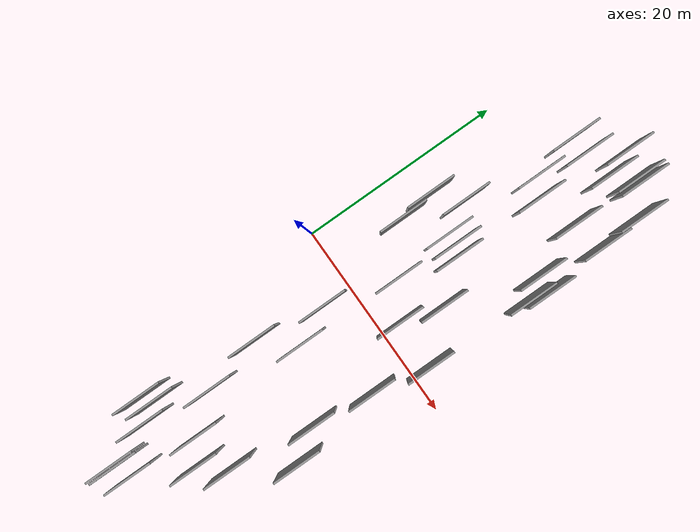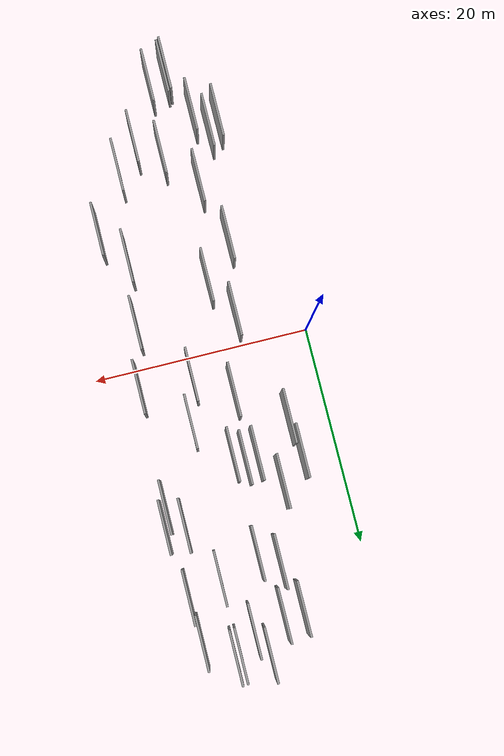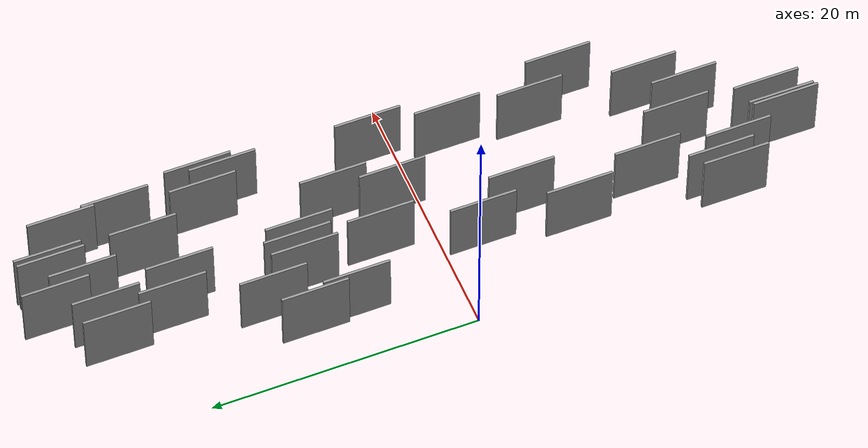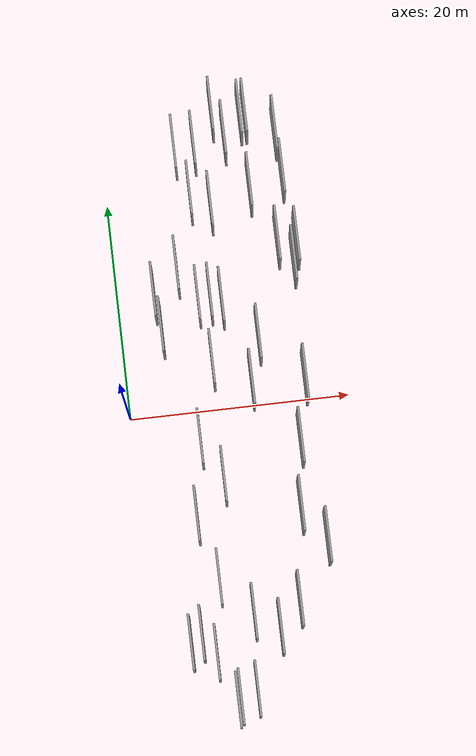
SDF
<sdf version="1.6">
 <world name="default">
  <scene>
   <sky><clouds><speed>12</speed></clouds></sky>
   <ambient>0.4 0.4 0.4 1</ambient>
   <background>0.7 0.7 0.7 1</background>
   <shadows>1</shadows>
  </scene>
  <gravity>0 0 -9.8066</gravity>
  <magnetic_field>6e-06 2.3e-05 -4.2e-05</magnetic_field>
  <physics default="0" name="default_physics" type="ode">
   <ode>
    <solver>
     <type>quick</type>
     <iters>10</iters>
     <sor>1.0</sor>
     <use_dynamic_moi_rescaling>0</use_dynamic_moi_rescaling>
    </solver>
    <constraints>
     <cfm>0</cfm>
     <erp>0.2</erp>
     <contact_max_correcting_vel>100</contact_max_correcting_vel>
     <contact_surface_layer>0.001</contact_surface_layer>
    </constraints>
   </ode>
   <max_step_size>0.004</max_step_size>
   <real_time_factor>1</real_time_factor>
   <real_time_update_rate>250</real_time_update_rate>
  </physics>
  <light name="sun" type="directional">
   <pose>0 0 10 0 0 0</pose>
   <diffuse>0.8 0.8 0.8 1</diffuse>
   <specular>0.2 0.2 0.2 1</specular>
   <attenuation>
    <range>1000</range>
    <constant>0.9</constant>
    <linear>0.01</linear>
    <quadratic>0.001</quadratic>
   </attenuation>
   <direction>-0.5 0.1 -0.9</direction>
  </light>
  <model name="grey_wall_1">
   <static>1</static>
   <pose>16.2850 20.9617 0.0 0.000000 0.000000 1.570796</pose>
   <link name="link">
    <pose>0 0 2.50 0 0 0</pose>
    <collision name="collision"><geometry><box><size>5.00 0.2 5.00</size></box></geometry></collision>
    <visual name="visual">
     <cast_shadows>0</cast_shadows>
     <geometry><box><size>5.00 0.2 5.00</size></box></geometry>
     <material>
      <script>
       <uri>model://grey_wall/materials/scripts</uri>
       <uri>model://grey_wall/materials/textures</uri>
       <name>vrc/grey_wall</name>
      </script>
     </material>
    </visual>
   </link>
  </model>
  <model name="grey_wall_2">
   <static>1</static>
   <pose>8.5123 24.4699 0.0 0.000000 0.000000 1.570796</pose>
   <link name="link">
    <pose>0 0 2.50 0 0 0</pose>
    <collision name="collision"><geometry><box><size>5.00 0.2 5.00</size></box></geometry></collision>
    <visual name="visual">
     <cast_shadows>0</cast_shadows>
     <geometry><box><size>5.00 0.2 5.00</size></box></geometry>
     <material>
      <script>
       <uri>model://grey_wall/materials/scripts</uri>
       <uri>model://grey_wall/materials/textures</uri>
       <name>vrc/grey_wall</name>
      </script>
     </material>
    </visual>
   </link>
  </model>
  <model name="grey_wall_3">
   <static>1</static>
   <pose>9.1165 -18.8987 0.0 0.000000 0.000000 1.570796</pose>
   <link name="link">
    <pose>0 0 2.50 0 0 0</pose>
    <collision name="collision"><geometry><box><size>5.00 0.2 5.00</size></box></geometry></collision>
    <visual name="visual">
     <cast_shadows>0</cast_shadows>
     <geometry><box><size>5.00 0.2 5.00</size></box></geometry>
     <material>
      <script>
       <uri>model://grey_wall/materials/scripts</uri>
       <uri>model://grey_wall/materials/textures</uri>
       <name>vrc/grey_wall</name>
      </script>
     </material>
    </visual>
   </link>
  </model>
  <model name="grey_wall_4">
   <static>1</static>
   <pose>7.3375 10.1421 0.0 0.000000 0.000000 1.570796</pose>
   <link name="link">
    <pose>0 0 2.50 0 0 0</pose>
    <collision name="collision"><geometry><box><size>5.00 0.2 5.00</size></box></geometry></collision>
    <visual name="visual">
     <cast_shadows>0</cast_shadows>
     <geometry><box><size>5.00 0.2 5.00</size></box></geometry>
     <material>
      <script>
       <uri>model://grey_wall/materials/scripts</uri>
       <uri>model://grey_wall/materials/textures</uri>
       <name>vrc/grey_wall</name>
      </script>
     </material>
    </visual>
   </link>
  </model>
  <model name="grey_wall_5">
   <static>1</static>
   <pose>16.0768 25.0538 0.0 0.000000 0.000000 1.570796</pose>
   <link name="link">
    <pose>0 0 2.50 0 0 0</pose>
    <collision name="collision"><geometry><box><size>5.00 0.2 5.00</size></box></geometry></collision>
    <visual name="visual">
     <cast_shadows>0</cast_shadows>
     <geometry><box><size>5.00 0.2 5.00</size></box></geometry>
     <material>
      <script>
       <uri>model://grey_wall/materials/scripts</uri>
       <uri>model://grey_wall/materials/textures</uri>
       <name>vrc/grey_wall</name>
      </script>
     </material>
    </visual>
   </link>
  </model>
  <model name="grey_wall_6">
   <static>1</static>
   <pose>11.3872 25.1370 0.0 0.000000 0.000000 1.570796</pose>
   <link name="link">
    <pose>0 0 2.50 0 0 0</pose>
    <collision name="collision"><geometry><box><size>5.00 0.2 5.00</size></box></geometry></collision>
    <visual name="visual">
     <cast_shadows>0</cast_shadows>
     <geometry><box><size>5.00 0.2 5.00</size></box></geometry>
     <material>
      <script>
       <uri>model://grey_wall/materials/scripts</uri>
       <uri>model://grey_wall/materials/textures</uri>
       <name>vrc/grey_wall</name>
      </script>
     </material>
    </visual>
   </link>
  </model>
  <model name="grey_wall_7">
   <static>1</static>
   <pose>8.6563 -25.7022 0.0 0.000000 0.000000 1.570796</pose>
   <link name="link">
    <pose>0 0 2.50 0 0 0</pose>
    <collision name="collision"><geometry><box><size>5.00 0.2 5.00</size></box></geometry></collision>
    <visual name="visual">
     <cast_shadows>0</cast_shadows>
     <geometry><box><size>5.00 0.2 5.00</size></box></geometry>
     <material>
      <script>
       <uri>model://grey_wall/materials/scripts</uri>
       <uri>model://grey_wall/materials/textures</uri>
       <name>vrc/grey_wall</name>
      </script>
     </material>
    </visual>
   </link>
  </model>
  <model name="grey_wall_8">
   <static>1</static>
   <pose>7.1136 -26.2114 0.0 0.000000 0.000000 1.570796</pose>
   <link name="link">
    <pose>0 0 2.50 0 0 0</pose>
    <collision name="collision"><geometry><box><size>5.00 0.2 5.00</size></box></geometry></collision>
    <visual name="visual">
     <cast_shadows>0</cast_shadows>
     <geometry><box><size>5.00 0.2 5.00</size></box></geometry>
     <material>
      <script>
       <uri>model://grey_wall/materials/scripts</uri>
       <uri>model://grey_wall/materials/textures</uri>
       <name>vrc/grey_wall</name>
      </script>
     </material>
    </visual>
   </link>
  </model>
  <model name="grey_wall_9">
   <static>1</static>
   <pose>15.1032 -3.7774 0.0 0.000000 0.000000 1.570796</pose>
   <link name="link">
    <pose>0 0 2.50 0 0 0</pose>
    <collision name="collision"><geometry><box><size>5.00 0.2 5.00</size></box></geometry></collision>
    <visual name="visual">
     <cast_shadows>0</cast_shadows>
     <geometry><box><size>5.00 0.2 5.00</size></box></geometry>
     <material>
      <script>
       <uri>model://grey_wall/materials/scripts</uri>
       <uri>model://grey_wall/materials/textures</uri>
       <name>vrc/grey_wall</name>
      </script>
     </material>
    </visual>
   </link>
  </model>
  <model name="grey_wall_10">
   <static>1</static>
   <pose>4.2993 -20.2837 0.0 0.000000 0.000000 1.570796</pose>
   <link name="link">
    <pose>0 0 2.50 0 0 0</pose>
    <collision name="collision"><geometry><box><size>5.00 0.2 5.00</size></box></geometry></collision>
    <visual name="visual">
     <cast_shadows>0</cast_shadows>
     <geometry><box><size>5.00 0.2 5.00</size></box></geometry>
     <material>
      <script>
       <uri>model://grey_wall/materials/scripts</uri>
       <uri>model://grey_wall/materials/textures</uri>
       <name>vrc/grey_wall</name>
      </script>
     </material>
    </visual>
   </link>
  </model>
  <model name="grey_wall_11">
   <static>1</static>
   <pose>6.3876 -15.5115 0.0 0.000000 0.000000 1.570796</pose>
   <link name="link">
    <pose>0 0 2.50 0 0 0</pose>
    <collision name="collision"><geometry><box><size>5.00 0.2 5.00</size></box></geometry></collision>
    <visual name="visual">
     <cast_shadows>0</cast_shadows>
     <geometry><box><size>5.00 0.2 5.00</size></box></geometry>
     <material>
      <script>
       <uri>model://grey_wall/materials/scripts</uri>
       <uri>model://grey_wall/materials/textures</uri>
       <name>vrc/grey_wall</name>
      </script>
     </material>
    </visual>
   </link>
  </model>
  <model name="grey_wall_12">
   <static>1</static>
   <pose>15.1484 14.7939 0.0 0.000000 0.000000 1.570796</pose>
   <link name="link">
    <pose>0 0 2.50 0 0 0</pose>
    <collision name="collision"><geometry><box><size>5.00 0.2 5.00</size></box></geometry></collision>
    <visual name="visual">
     <cast_shadows>0</cast_shadows>
     <geometry><box><size>5.00 0.2 5.00</size></box></geometry>
     <material>
      <script>
       <uri>model://grey_wall/materials/scripts</uri>
       <uri>model://grey_wall/materials/textures</uri>
       <name>vrc/grey_wall</name>
      </script>
     </material>
    </visual>
   </link>
  </model>
  <model name="grey_wall_13">
   <static>1</static>
   <pose>7.8260 -6.4523 0.0 0.000000 0.000000 1.570796</pose>
   <link name="link">
    <pose>0 0 2.50 0 0 0</pose>
    <collision name="collision"><geometry><box><size>5.00 0.2 5.00</size></box></geometry></collision>
    <visual name="visual">
     <cast_shadows>0</cast_shadows>
     <geometry><box><size>5.00 0.2 5.00</size></box></geometry>
     <material>
      <script>
       <uri>model://grey_wall/materials/scripts</uri>
       <uri>model://grey_wall/materials/textures</uri>
       <name>vrc/grey_wall</name>
      </script>
     </material>
    </visual>
   </link>
  </model>
  <model name="grey_wall_14">
   <static>1</static>
   <pose>11.3281 1.9668 0.0 0.000000 0.000000 1.570796</pose>
   <link name="link">
    <pose>0 0 2.50 0 0 0</pose>
    <collision name="collision"><geometry><box><size>5.00 0.2 5.00</size></box></geometry></collision>
    <visual name="visual">
     <cast_shadows>0</cast_shadows>
     <geometry><box><size>5.00 0.2 5.00</size></box></geometry>
     <material>
      <script>
       <uri>model://grey_wall/materials/scripts</uri>
       <uri>model://grey_wall/materials/textures</uri>
       <name>vrc/grey_wall</name>
      </script>
     </material>
    </visual>
   </link>
  </model>
  <model name="grey_wall_15">
   <static>1</static>
   <pose>7.6698 19.8622 0.0 0.000000 0.000000 1.570796</pose>
   <link name="link">
    <pose>0 0 2.50 0 0 0</pose>
    <collision name="collision"><geometry><box><size>5.00 0.2 5.00</size></box></geometry></collision>
    <visual name="visual">
     <cast_shadows>0</cast_shadows>
     <geometry><box><size>5.00 0.2 5.00</size></box></geometry>
     <material>
      <script>
       <uri>model://grey_wall/materials/scripts</uri>
       <uri>model://grey_wall/materials/textures</uri>
       <name>vrc/grey_wall</name>
      </script>
     </material>
    </visual>
   </link>
  </model>
  <model name="grey_wall_16">
   <static>1</static>
   <pose>6.7190 24.3007 0.0 0.000000 0.000000 1.570796</pose>
   <link name="link">
    <pose>0 0 2.50 0 0 0</pose>
    <collision name="collision"><geometry><box><size>5.00 0.2 5.00</size></box></geometry></collision>
    <visual name="visual">
     <cast_shadows>0</cast_shadows>
     <geometry><box><size>5.00 0.2 5.00</size></box></geometry>
     <material>
      <script>
       <uri>model://grey_wall/materials/scripts</uri>
       <uri>model://grey_wall/materials/textures</uri>
       <name>vrc/grey_wall</name>
      </script>
     </material>
    </visual>
   </link>
  </model>
  <model name="grey_wall_17">
   <static>1</static>
   <pose>8.4577 10.2517 0.0 0.000000 0.000000 1.570796</pose>
   <link name="link">
    <pose>0 0 2.50 0 0 0</pose>
    <collision name="collision"><geometry><box><size>5.00 0.2 5.00</size></box></geometry></collision>
    <visual name="visual">
     <cast_shadows>0</cast_shadows>
     <geometry><box><size>5.00 0.2 5.00</size></box></geometry>
     <material>
      <script>
       <uri>model://grey_wall/materials/scripts</uri>
       <uri>model://grey_wall/materials/textures</uri>
       <name>vrc/grey_wall</name>
      </script>
     </material>
    </visual>
   </link>
  </model>
  <model name="grey_wall_18">
   <static>1</static>
   <pose>6.8501 -26.4344 0.0 0.000000 0.000000 1.570796</pose>
   <link name="link">
    <pose>0 0 2.50 0 0 0</pose>
    <collision name="collision"><geometry><box><size>5.00 0.2 5.00</size></box></geometry></collision>
    <visual name="visual">
     <cast_shadows>0</cast_shadows>
     <geometry><box><size>5.00 0.2 5.00</size></box></geometry>
     <material>
      <script>
       <uri>model://grey_wall/materials/scripts</uri>
       <uri>model://grey_wall/materials/textures</uri>
       <name>vrc/grey_wall</name>
      </script>
     </material>
    </visual>
   </link>
  </model>
  <model name="grey_wall_19">
   <static>1</static>
   <pose>16.1686 1.9023 0.0 0.000000 0.000000 1.570796</pose>
   <link name="link">
    <pose>0 0 2.50 0 0 0</pose>
    <collision name="collision"><geometry><box><size>5.00 0.2 5.00</size></box></geometry></collision>
    <visual name="visual">
     <cast_shadows>0</cast_shadows>
     <geometry><box><size>5.00 0.2 5.00</size></box></geometry>
     <material>
      <script>
       <uri>model://grey_wall/materials/scripts</uri>
       <uri>model://grey_wall/materials/textures</uri>
       <name>vrc/grey_wall</name>
      </script>
     </material>
    </visual>
   </link>
  </model>
  <model name="grey_wall_20">
   <static>1</static>
   <pose>12.3964 6.0220 0.0 0.000000 0.000000 1.570796</pose>
   <link name="link">
    <pose>0 0 2.50 0 0 0</pose>
    <collision name="collision"><geometry><box><size>5.00 0.2 5.00</size></box></geometry></collision>
    <visual name="visual">
     <cast_shadows>0</cast_shadows>
     <geometry><box><size>5.00 0.2 5.00</size></box></geometry>
     <material>
      <script>
       <uri>model://grey_wall/materials/scripts</uri>
       <uri>model://grey_wall/materials/textures</uri>
       <name>vrc/grey_wall</name>
      </script>
     </material>
    </visual>
   </link>
  </model>
  <model name="grey_wall_21">
   <static>1</static>
   <pose>13.5122 26.9540 0.0 0.000000 0.000000 1.570796</pose>
   <link name="link">
    <pose>0 0 2.50 0 0 0</pose>
    <collision name="collision"><geometry><box><size>5.00 0.2 5.00</size></box></geometry></collision>
    <visual name="visual">
     <cast_shadows>0</cast_shadows>
     <geometry><box><size>5.00 0.2 5.00</size></box></geometry>
     <material>
      <script>
       <uri>model://grey_wall/materials/scripts</uri>
       <uri>model://grey_wall/materials/textures</uri>
       <name>vrc/grey_wall</name>
      </script>
     </material>
    </visual>
   </link>
  </model>
  <model name="grey_wall_22">
   <static>1</static>
   <pose>13.1874 20.0100 0.0 0.000000 0.000000 1.570796</pose>
   <link name="link">
    <pose>0 0 2.50 0 0 0</pose>
    <collision name="collision"><geometry><box><size>5.00 0.2 5.00</size></box></geometry></collision>
    <visual name="visual">
     <cast_shadows>0</cast_shadows>
     <geometry><box><size>5.00 0.2 5.00</size></box></geometry>
     <material>
      <script>
       <uri>model://grey_wall/materials/scripts</uri>
       <uri>model://grey_wall/materials/textures</uri>
       <name>vrc/grey_wall</name>
      </script>
     </material>
    </visual>
   </link>
  </model>
  <model name="grey_wall_23">
   <static>1</static>
   <pose>16.8858 14.5298 0.0 0.000000 0.000000 1.570796</pose>
   <link name="link">
    <pose>0 0 2.50 0 0 0</pose>
    <collision name="collision"><geometry><box><size>5.00 0.2 5.00</size></box></geometry></collision>
    <visual name="visual">
     <cast_shadows>0</cast_shadows>
     <geometry><box><size>5.00 0.2 5.00</size></box></geometry>
     <material>
      <script>
       <uri>model://grey_wall/materials/scripts</uri>
       <uri>model://grey_wall/materials/textures</uri>
       <name>vrc/grey_wall</name>
      </script>
     </material>
    </visual>
   </link>
  </model>
  <model name="grey_wall_24">
   <static>1</static>
   <pose>5.0446 -9.7269 0.0 0.000000 0.000000 1.570796</pose>
   <link name="link">
    <pose>0 0 2.50 0 0 0</pose>
    <collision name="collision"><geometry><box><size>5.00 0.2 5.00</size></box></geometry></collision>
    <visual name="visual">
     <cast_shadows>0</cast_shadows>
     <geometry><box><size>5.00 0.2 5.00</size></box></geometry>
     <material>
      <script>
       <uri>model://grey_wall/materials/scripts</uri>
       <uri>model://grey_wall/materials/textures</uri>
       <name>vrc/grey_wall</name>
      </script>
     </material>
    </visual>
   </link>
  </model>
  <model name="grey_wall_25">
   <static>1</static>
   <pose>3.4030 10.8949 0.0 0.000000 0.000000 1.570796</pose>
   <link name="link">
    <pose>0 0 2.50 0 0 0</pose>
    <collision name="collision"><geometry><box><size>5.00 0.2 5.00</size></box></geometry></collision>
    <visual name="visual">
     <cast_shadows>0</cast_shadows>
     <geometry><box><size>5.00 0.2 5.00</size></box></geometry>
     <material>
      <script>
       <uri>model://grey_wall/materials/scripts</uri>
       <uri>model://grey_wall/materials/textures</uri>
       <name>vrc/grey_wall</name>
      </script>
     </material>
    </visual>
   </link>
  </model>
  <model name="grey_wall_26">
   <static>1</static>
   <pose>16.4226 12.8266 0.0 0.000000 0.000000 1.570796</pose>
   <link name="link">
    <pose>0 0 2.50 0 0 0</pose>
    <collision name="collision"><geometry><box><size>5.00 0.2 5.00</size></box></geometry></collision>
    <visual name="visual">
     <cast_shadows>0</cast_shadows>
     <geometry><box><size>5.00 0.2 5.00</size></box></geometry>
     <material>
      <script>
       <uri>model://grey_wall/materials/scripts</uri>
       <uri>model://grey_wall/materials/textures</uri>
       <name>vrc/grey_wall</name>
      </script>
     </material>
    </visual>
   </link>
  </model>
  <model name="grey_wall_27">
   <static>1</static>
   <pose>13.3146 -18.2218 0.0 0.000000 0.000000 1.570796</pose>
   <link name="link">
    <pose>0 0 2.50 0 0 0</pose>
    <collision name="collision"><geometry><box><size>5.00 0.2 5.00</size></box></geometry></collision>
    <visual name="visual">
     <cast_shadows>0</cast_shadows>
     <geometry><box><size>5.00 0.2 5.00</size></box></geometry>
     <material>
      <script>
       <uri>model://grey_wall/materials/scripts</uri>
       <uri>model://grey_wall/materials/textures</uri>
       <name>vrc/grey_wall</name>
      </script>
     </material>
    </visual>
   </link>
  </model>
  <model name="grey_wall_28">
   <static>1</static>
   <pose>7.9757 4.1804 0.0 0.000000 0.000000 1.570796</pose>
   <link name="link">
    <pose>0 0 2.50 0 0 0</pose>
    <collision name="collision"><geometry><box><size>5.00 0.2 5.00</size></box></geometry></collision>
    <visual name="visual">
     <cast_shadows>0</cast_shadows>
     <geometry><box><size>5.00 0.2 5.00</size></box></geometry>
     <material>
      <script>
       <uri>model://grey_wall/materials/scripts</uri>
       <uri>model://grey_wall/materials/textures</uri>
       <name>vrc/grey_wall</name>
      </script>
     </material>
    </visual>
   </link>
  </model>
  <model name="grey_wall_29">
   <static>1</static>
   <pose>9.4392 18.6886 0.0 0.000000 0.000000 1.570796</pose>
   <link name="link">
    <pose>0 0 2.50 0 0 0</pose>
    <collision name="collision"><geometry><box><size>5.00 0.2 5.00</size></box></geometry></collision>
    <visual name="visual">
     <cast_shadows>0</cast_shadows>
     <geometry><box><size>5.00 0.2 5.00</size></box></geometry>
     <material>
      <script>
       <uri>model://grey_wall/materials/scripts</uri>
       <uri>model://grey_wall/materials/textures</uri>
       <name>vrc/grey_wall</name>
      </script>
     </material>
    </visual>
   </link>
  </model>
  <model name="grey_wall_30">
   <static>1</static>
   <pose>14.4162 -9.8587 0.0 0.000000 0.000000 1.570796</pose>
   <link name="link">
    <pose>0 0 2.50 0 0 0</pose>
    <collision name="collision"><geometry><box><size>5.00 0.2 5.00</size></box></geometry></collision>
    <visual name="visual">
     <cast_shadows>0</cast_shadows>
     <geometry><box><size>5.00 0.2 5.00</size></box></geometry>
     <material>
      <script>
       <uri>model://grey_wall/materials/scripts</uri>
       <uri>model://grey_wall/materials/textures</uri>
       <name>vrc/grey_wall</name>
      </script>
     </material>
    </visual>
   </link>
  </model>
  <model name="grey_wall_31">
   <static>1</static>
   <pose>9.4636 9.7417 0.0 0.000000 0.000000 1.570796</pose>
   <link name="link">
    <pose>0 0 2.50 0 0 0</pose>
    <collision name="collision"><geometry><box><size>5.00 0.2 5.00</size></box></geometry></collision>
    <visual name="visual">
     <cast_shadows>0</cast_shadows>
     <geometry><box><size>5.00 0.2 5.00</size></box></geometry>
     <material>
      <script>
       <uri>model://grey_wall/materials/scripts</uri>
       <uri>model://grey_wall/materials/textures</uri>
       <name>vrc/grey_wall</name>
      </script>
     </material>
    </visual>
   </link>
  </model>
  <model name="grey_wall_32">
   <static>1</static>
   <pose>11.3332 -20.4743 0.0 0.000000 0.000000 1.570796</pose>
   <link name="link">
    <pose>0 0 2.50 0 0 0</pose>
    <collision name="collision"><geometry><box><size>5.00 0.2 5.00</size></box></geometry></collision>
    <visual name="visual">
     <cast_shadows>0</cast_shadows>
     <geometry><box><size>5.00 0.2 5.00</size></box></geometry>
     <material>
      <script>
       <uri>model://grey_wall/materials/scripts</uri>
       <uri>model://grey_wall/materials/textures</uri>
       <name>vrc/grey_wall</name>
      </script>
     </material>
    </visual>
   </link>
  </model>
  <model name="grey_wall_33">
   <static>1</static>
   <pose>3.2729 -20.9939 0.0 0.000000 0.000000 1.570796</pose>
   <link name="link">
    <pose>0 0 2.50 0 0 0</pose>
    <collision name="collision"><geometry><box><size>5.00 0.2 5.00</size></box></geometry></collision>
    <visual name="visual">
     <cast_shadows>0</cast_shadows>
     <geometry><box><size>5.00 0.2 5.00</size></box></geometry>
     <material>
      <script>
       <uri>model://grey_wall/materials/scripts</uri>
       <uri>model://grey_wall/materials/textures</uri>
       <name>vrc/grey_wall</name>
      </script>
     </material>
    </visual>
   </link>
  </model>
  <model name="grey_wall_34">
   <static>1</static>
   <pose>6.1259 -2.8483 0.0 0.000000 0.000000 1.570796</pose>
   <link name="link">
    <pose>0 0 2.50 0 0 0</pose>
    <collision name="collision"><geometry><box><size>5.00 0.2 5.00</size></box></geometry></collision>
    <visual name="visual">
     <cast_shadows>0</cast_shadows>
     <geometry><box><size>5.00 0.2 5.00</size></box></geometry>
     <material>
      <script>
       <uri>model://grey_wall/materials/scripts</uri>
       <uri>model://grey_wall/materials/textures</uri>
       <name>vrc/grey_wall</name>
      </script>
     </material>
    </visual>
   </link>
  </model>
  <model name="grey_wall_35">
   <static>1</static>
   <pose>10.4834 27.4618 0.0 0.000000 0.000000 1.570796</pose>
   <link name="link">
    <pose>0 0 2.50 0 0 0</pose>
    <collision name="collision"><geometry><box><size>5.00 0.2 5.00</size></box></geometry></collision>
    <visual name="visual">
     <cast_shadows>0</cast_shadows>
     <geometry><box><size>5.00 0.2 5.00</size></box></geometry>
     <material>
      <script>
       <uri>model://grey_wall/materials/scripts</uri>
       <uri>model://grey_wall/materials/textures</uri>
       <name>vrc/grey_wall</name>
      </script>
     </material>
    </visual>
   </link>
  </model>
  <model name="grey_wall_36">
   <static>1</static>
   <pose>13.0429 26.8832 0.0 0.000000 0.000000 1.570796</pose>
   <link name="link">
    <pose>0 0 2.50 0 0 0</pose>
    <collision name="collision"><geometry><box><size>5.00 0.2 5.00</size></box></geometry></collision>
    <visual name="visual">
     <cast_shadows>0</cast_shadows>
     <geometry><box><size>5.00 0.2 5.00</size></box></geometry>
     <material>
      <script>
       <uri>model://grey_wall/materials/scripts</uri>
       <uri>model://grey_wall/materials/textures</uri>
       <name>vrc/grey_wall</name>
      </script>
     </material>
    </visual>
   </link>
  </model>
  <model name="grey_wall_37">
   <static>1</static>
   <pose>3.7523 7.6650 0.0 0.000000 0.000000 1.570796</pose>
   <link name="link">
    <pose>0 0 2.50 0 0 0</pose>
    <collision name="collision"><geometry><box><size>5.00 0.2 5.00</size></box></geometry></collision>
    <visual name="visual">
     <cast_shadows>0</cast_shadows>
     <geometry><box><size>5.00 0.2 5.00</size></box></geometry>
     <material>
      <script>
       <uri>model://grey_wall/materials/scripts</uri>
       <uri>model://grey_wall/materials/textures</uri>
       <name>vrc/grey_wall</name>
      </script>
     </material>
    </visual>
   </link>
  </model>
  <model name="grey_wall_38">
   <static>1</static>
   <pose>16.4453 -12.8843 0.0 0.000000 0.000000 1.570796</pose>
   <link name="link">
    <pose>0 0 2.50 0 0 0</pose>
    <collision name="collision"><geometry><box><size>5.00 0.2 5.00</size></box></geometry></collision>
    <visual name="visual">
     <cast_shadows>0</cast_shadows>
     <geometry><box><size>5.00 0.2 5.00</size></box></geometry>
     <material>
      <script>
       <uri>model://grey_wall/materials/scripts</uri>
       <uri>model://grey_wall/materials/textures</uri>
       <name>vrc/grey_wall</name>
      </script>
     </material>
    </visual>
   </link>
  </model>
  <model name="grey_wall_39">
   <static>1</static>
   <pose>5.7251 13.1013 0.0 0.000000 0.000000 1.570796</pose>
   <link name="link">
    <pose>0 0 2.50 0 0 0</pose>
    <collision name="collision"><geometry><box><size>5.00 0.2 5.00</size></box></geometry></collision>
    <visual name="visual">
     <cast_shadows>0</cast_shadows>
     <geometry><box><size>5.00 0.2 5.00</size></box></geometry>
     <material>
      <script>
       <uri>model://grey_wall/materials/scripts</uri>
       <uri>model://grey_wall/materials/textures</uri>
       <name>vrc/grey_wall</name>
      </script>
     </material>
    </visual>
   </link>
  </model>
  <model name="grey_wall_40">
   <static>1</static>
   <pose>5.4481 -22.1121 0.0 0.000000 0.000000 1.570796</pose>
   <link name="link">
    <pose>0 0 2.50 0 0 0</pose>
    <collision name="collision"><geometry><box><size>5.00 0.2 5.00</size></box></geometry></collision>
    <visual name="visual">
     <cast_shadows>0</cast_shadows>
     <geometry><box><size>5.00 0.2 5.00</size></box></geometry>
     <material>
      <script>
       <uri>model://grey_wall/materials/scripts</uri>
       <uri>model://grey_wall/materials/textures</uri>
       <name>vrc/grey_wall</name>
      </script>
     </material>
    </visual>
   </link>
  </model>
 </world>
</sdf>
